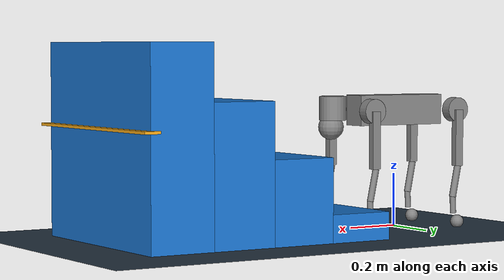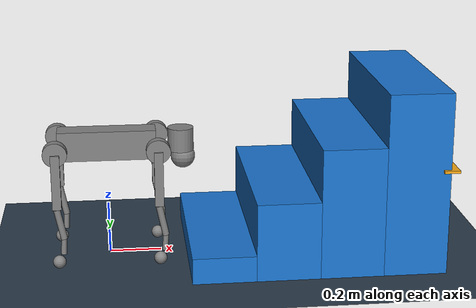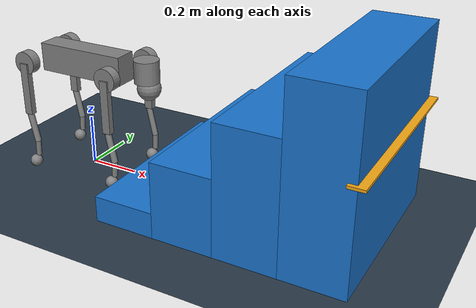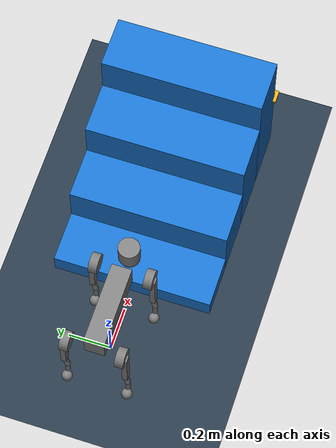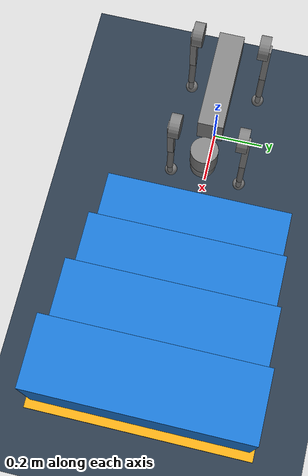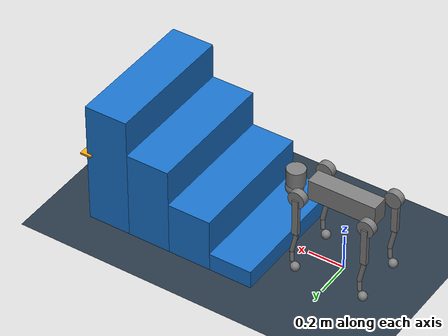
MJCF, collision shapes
<mujoco model="go2 stair acceptance">
  <include file="go2.xml"/>

  <statistic center="0.8 0 0.35" extent="2.0"/>
  <visual>
    <headlight diffuse="0.7 0.7 0.7" ambient="0.35 0.35 0.35" specular="0 0 0"/>
    <rgba haze="0.12 0.20 0.28 1"/>
    <global azimuth="125" elevation="-18"/>
  </visual>
  <asset>
    <texture type="skybox" builtin="gradient" rgb1="0.32 0.52 0.72" rgb2="0.02 0.02 0.04" width="512" height="3072"/>
    <texture type="2d" name="groundplane" builtin="checker" mark="edge" rgb1="0.22 0.30 0.38" rgb2="0.10 0.14 0.18" markrgb="0.8 0.8 0.8" width="300" height="300"/>
    <material name="groundplane" texture="groundplane" texuniform="true" texrepeat="5 5" reflectance="0.12"/>
    <material name="stair_step" rgba="0.10 0.45 0.80 1"/>
    <material name="stair_edge" rgba="0.95 0.65 0.08 1"/>
  </asset>
  <worldbody>
    <light pos="0 0 2" dir="0 0 -1" directional="true" castshadow="false"/>
    <geom name="floor" size="0 0 0.05" type="plane" material="groundplane"/>
    <!-- Four physical collision steps: 0.24 m tread, 0.10 m riser, 0.75 m wide. -->
    <geom name="terrain_step_1" pos="0.42 0 0.05" type="box" size="0.12 0.375 0.05" material="stair_step" contype="1" conaffinity="1"/>
    <geom name="terrain_step_2" pos="0.66 0 0.15" type="box" size="0.12 0.375 0.15" material="stair_step" contype="1" conaffinity="1"/>
    <geom name="terrain_step_3" pos="0.90 0 0.25" type="box" size="0.12 0.375 0.25" material="stair_step" contype="1" conaffinity="1"/>
    <geom name="terrain_step_4" pos="1.14 0 0.35" type="box" size="0.12 0.375 0.35" material="stair_step" contype="1" conaffinity="1"/>
    <!-- A non-colliding top edge marker makes the risers easy to inspect. -->
    <geom name="stair_finish_marker" pos="1.26 0 0.405" type="box" size="0.03 0.39 0.005" material="stair_edge" contype="0" conaffinity="0"/>
  </worldbody>
</mujoco>

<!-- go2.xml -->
<mujoco model="go2">
  <compiler angle="radian" meshdir="assets" autolimits="true" />

  <option cone="elliptic" impratio="100" />

  <default>
    <default class="go2">
      <geom friction="0.4" margin="0.001" condim="1"/>
      <joint axis="0 1 0" damping="0.1" armature="0.01" frictionloss="0.2"/>
      <motor ctrlrange="-40.0 40.0"/>
      <default class="abduction">
        <joint axis="1 0 0" range="-1.0472 1.0472"/>
      </default>
      <default class="hip">
        <default class="front_hip">
          <joint range="-1.5708 3.4907"/>
        </default>
        <default class="back_hip">
          <joint range="-0.5236 4.5379"/>
        </default>
      </default>
      <default class="knee">
        <joint range="-2.7227 -0.83776"/>
        <motor ctrlrange="-45.43 45.43"/>
      </default>
      <default class="visual">
        <geom type="mesh" contype="0" conaffinity="0" group="2"/>
      </default>
      <default class="collision">
        <geom group="3"/>
        <default class="foot">
          <geom size="0.022" pos="-0.002 0 -0.213" priority="1" condim="6"
            friction="0.8 0.02 0.01"/>
        </default>
      </default>
    </default>
  </default>

  <asset>
    <material name="metal" rgba=".9 .95 .95 1" />
    <material name="black" rgba="0 0 0 1" />
    <material name="white" rgba="1 1 1 1" />
    <material name="gray" rgba="0.671705 0.692426 0.774270 1" />

    <mesh file="base_0.obj" />
    <mesh file="base_1.obj" />
    <mesh file="base_2.obj" />
    <mesh file="base_3.obj" />
    <mesh file="base_4.obj" />
    <mesh file="hip_0.obj" />
    <mesh file="hip_1.obj" />
    <mesh file="thigh_0.obj" />
    <mesh file="thigh_1.obj" />
    <mesh file="thigh_mirror_0.obj" />
    <mesh file="thigh_mirror_1.obj" />
    <mesh file="calf_0.obj" />
    <mesh file="calf_1.obj" />
    <mesh file="calf_mirror_0.obj" />
    <mesh file="calf_mirror_1.obj" />
    <mesh file="foot.obj" />
  </asset>

  <worldbody>
    <body name="base_link" pos="0 0 0.445" childclass="go2">
      <inertial pos="0.021112 0 -0.005366" quat="-0.000543471 0.713435 -0.00173769 0.700719"
        mass="6.921"
        diaginertia="0.107027 0.0980771 0.0244531" />
      <freejoint />
      <geom mesh="base_0" material="black" class="visual" />
      <geom mesh="base_1" material="black" class="visual" />
      <geom mesh="base_2" material="black" class="visual" />
      <geom mesh="base_3" material="white" class="visual" />
      <geom mesh="base_4" material="gray" class="visual" />
      <geom size="0.1881 0.04675 0.057" type="box" class="collision" />
      <geom size="0.05 0.045" pos="0.285 0 0.01" type="cylinder" class="collision" />
      <geom size="0.047" pos="0.293 0 -0.06" class="collision" />
      <site name="imu" pos="-0.02557 0 0.04232" />
      <body name="FL_hip" pos="0.1934 0.0465 0">
        <inertial pos="-0.0054 0.00194 -0.000105" quat="0.497014 0.499245 0.505462 0.498237"
          mass="0.678"
          diaginertia="0.00088403 0.000596003 0.000479967" />
        <joint name="FL_hip_joint" class="abduction" />
        <geom mesh="hip_0" material="metal" class="visual" />
        <geom mesh="hip_1" material="gray" class="visual" />
        <geom size="0.046 0.02" pos="0 0.08 0" quat="1 1 0 0" type="cylinder" class="collision" />
        <body name="FL_thigh" pos="0 0.0955 0">
          <inertial pos="-0.00374 -0.0223 -0.0327" quat="0.829533 0.0847635 -0.0200632 0.551623"
            mass="1.152"
            diaginertia="0.00594973 0.00584149 0.000878787" />
          <joint name="FL_thigh_joint" class="front_hip" />
          <geom mesh="thigh_0" material="metal" class="visual" />
          <geom mesh="thigh_1" material="gray" class="visual" />
          <geom size="0.1065 0.01225 0.017" pos="0 0 -0.1065" quat="0.707107 0 0.707107 0"
            type="box" class="collision" />
          <body name="FL_calf" pos="0 0 -0.213">
            <inertial pos="0.00629595 -0.000622121 -0.141417"
              quat="0.710672 0.00154099 -0.00450087 0.703508"
              mass="0.241352" diaginertia="0.0014901 0.00146356 5.31397e-05" />
            <joint name="FL_calf_joint" class="knee" />
            <geom mesh="calf_0" material="gray" class="visual" />
            <geom mesh="calf_1" material="black" class="visual" />
            <geom size="0.012 0.06" pos="0.008 0 -0.06" quat="0.994493 0 -0.104807 0"
              type="cylinder" class="collision" />
            <geom size="0.011 0.0325" pos="0.02 0 -0.148" quat="0.999688 0 0.0249974 0"
              type="cylinder" class="collision" />
            <geom pos="0 0 -0.213" mesh="foot" class="visual" material="black" />
            <geom name="FL" class="foot" />
            <site name="FL_foot_contact" pos="0 0 -0.213" size="0.025" type="sphere" />
            <body name="FL_foot" pos="0 0 -0.213" />
          </body>
        </body>
      </body>
      <body name="FR_hip" pos="0.1934 -0.0465 0">
        <inertial pos="-0.0054 -0.00194 -0.000105" quat="0.498237 0.505462 0.499245 0.497014"
          mass="0.678"
          diaginertia="0.00088403 0.000596003 0.000479967" />
        <joint name="FR_hip_joint" class="abduction" />
        <geom mesh="hip_0" material="metal" class="visual" quat="4.63268e-05 1 0 0" />
        <geom mesh="hip_1" material="gray" class="visual" quat="4.63268e-05 1 0 0" />
        <geom size="0.046 0.02" pos="0 -0.08 0" quat="0.707107 0.707107 0 0" type="cylinder"
          class="collision" />
        <body name="FR_thigh" pos="0 -0.0955 0">
          <inertial pos="-0.00374 0.0223 -0.0327" quat="0.551623 -0.0200632 0.0847635 0.829533"
            mass="1.152"
            diaginertia="0.00594973 0.00584149 0.000878787" />
          <joint name="FR_thigh_joint" class="front_hip" />
          <geom mesh="thigh_mirror_0" material="metal" class="visual" />
          <geom mesh="thigh_mirror_1" material="gray" class="visual" />
          <geom size="0.1065 0.01225 0.017" pos="0 0 -0.1065" quat="0.707107 0 0.707107 0"
            type="box" class="collision" />
          <body name="FR_calf" pos="0 0 -0.213">
            <inertial pos="0.00629595 0.000622121 -0.141417"
              quat="0.703508 -0.00450087 0.00154099 0.710672"
              mass="0.241352" diaginertia="0.0014901 0.00146356 5.31397e-05" />
            <joint name="FR_calf_joint" class="knee" />
            <geom mesh="calf_mirror_0" material="gray" class="visual" />
            <geom mesh="calf_mirror_1" material="black" class="visual" />
            <geom size="0.013 0.06" pos="0.01 0 -0.06" quat="0.995004 0 -0.0998334 0"
              type="cylinder" class="collision" />
            <geom size="0.011 0.0325" pos="0.02 0 -0.148" quat="0.999688 0 0.0249974 0"
              type="cylinder" class="collision" />
            <geom pos="0 0 -0.213" mesh="foot" class="visual" material="black" />
            <geom name="FR" class="foot" />
            <site name="FR_foot_contact" pos="0 0 -0.213" size="0.025" type="sphere" />
            <body name="FR_foot" pos="0 0 -0.213" />
          </body>
        </body>
      </body>
      <body name="RL_hip" pos="-0.1934 0.0465 0">
        <inertial pos="0.0054 0.00194 -0.000105" quat="0.505462 0.498237 0.497014 0.499245"
          mass="0.678"
          diaginertia="0.00088403 0.000596003 0.000479967" />
        <joint name="RL_hip_joint" class="abduction" />
        <geom mesh="hip_0" material="metal" class="visual" quat="4.63268e-05 0 1 0" />
        <geom mesh="hip_1" material="gray" class="visual" quat="4.63268e-05 0 1 0" />
        <geom size="0.046 0.02" pos="0 0.08 0" quat="0.707107 0.707107 0 0" type="cylinder"
          class="collision" />
        <body name="RL_thigh" pos="0 0.0955 0">
          <inertial pos="-0.00374 -0.0223 -0.0327" quat="0.829533 0.0847635 -0.0200632 0.551623"
            mass="1.152"
            diaginertia="0.00594973 0.00584149 0.000878787" />
          <joint name="RL_thigh_joint" class="back_hip" />
          <geom mesh="thigh_0" material="metal" class="visual" />
          <geom mesh="thigh_1" material="gray" class="visual" />
          <geom size="0.1065 0.01225 0.017" pos="0 0 -0.1065" quat="0.707107 0 0.707107 0"
            type="box" class="collision" />
          <body name="RL_calf" pos="0 0 -0.213">
            <inertial pos="0.00629595 -0.000622121 -0.141417"
              quat="0.710672 0.00154099 -0.00450087 0.703508"
              mass="0.241352" diaginertia="0.0014901 0.00146356 5.31397e-05" />
            <joint name="RL_calf_joint" class="knee" />
            <geom mesh="calf_0" material="gray" class="visual" />
            <geom mesh="calf_1" material="black" class="visual" />
            <geom size="0.013 0.06" pos="0.01 0 -0.06" quat="0.995004 0 -0.0998334 0"
              type="cylinder" class="collision" />
            <geom size="0.011 0.0325" pos="0.02 0 -0.148" quat="0.999688 0 0.0249974 0"
              type="cylinder" class="collision" />
            <geom pos="0 0 -0.213" mesh="foot" class="visual" material="black" />
            <geom name="RL" class="foot" />
            <site name="RL_foot_contact" pos="0 0 -0.213" size="0.025" type="sphere" />
            <body name="RL_foot" pos="0 0 -0.213" />
          </body>
        </body>
      </body>
      <body name="RR_hip" pos="-0.1934 -0.0465 0">
        <inertial pos="0.0054 -0.00194 -0.000105" quat="0.499245 0.497014 0.498237 0.505462"
          mass="0.678"
          diaginertia="0.00088403 0.000596003 0.000479967" />
        <joint name="RR_hip_joint" class="abduction" />
        <geom mesh="hip_0" material="metal" class="visual"
          quat="2.14617e-09 4.63268e-05 4.63268e-05 -1" />
        <geom mesh="hip_1" material="gray" class="visual"
          quat="2.14617e-09 4.63268e-05 4.63268e-05 -1" />
        <geom size="0.046 0.02" pos="0 -0.08 0" quat="0.707107 0.707107 0 0" type="cylinder"
          class="collision" />
        <body name="RR_thigh" pos="0 -0.0955 0">
          <inertial pos="-0.00374 0.0223 -0.0327" quat="0.551623 -0.0200632 0.0847635 0.829533"
            mass="1.152"
            diaginertia="0.00594973 0.00584149 0.000878787" />
          <joint name="RR_thigh_joint" class="back_hip" />
          <geom mesh="thigh_mirror_0" material="metal" class="visual" />
          <geom mesh="thigh_mirror_1" material="gray" class="visual" />
          <geom size="0.1065 0.01225 0.017" pos="0 0 -0.1065" quat="0.707107 0 0.707107 0"
            type="box" class="collision" />
          <body name="RR_calf" pos="0 0 -0.213">
            <inertial pos="0.00629595 0.000622121 -0.141417"
              quat="0.703508 -0.00450087 0.00154099 0.710672"
              mass="0.241352" diaginertia="0.0014901 0.00146356 5.31397e-05" />
            <joint name="RR_calf_joint" class="knee" />
            <geom mesh="calf_mirror_0" material="gray" class="visual" />
            <geom mesh="calf_mirror_1" material="black" class="visual" />
            <geom size="0.013 0.06" pos="0.01 0 -0.06" quat="0.995004 0 -0.0998334 0"
              type="cylinder" class="collision" />
            <geom size="0.011 0.0325" pos="0.02 0 -0.148" quat="0.999688 0 0.0249974 0"
              type="cylinder" class="collision" />
            <geom pos="0 0 -0.213" mesh="foot" class="visual" material="black" />
            <geom name="RR" class="foot" />
            <site name="RR_foot_contact" pos="0 0 -0.213" size="0.025" type="sphere" />
            <body name="RR_foot" pos="0 0 -0.213" />
          </body>
        </body>
      </body>
    </body>
  </worldbody>

  <actuator>
    <motor class="abduction" name="FR_hip" joint="FR_hip_joint" />
    <motor class="hip" name="FR_thigh" joint="FR_thigh_joint" />
    <motor class="knee" name="FR_calf" joint="FR_calf_joint" />
    <motor class="abduction" name="FL_hip" joint="FL_hip_joint" />
    <motor class="hip" name="FL_thigh" joint="FL_thigh_joint" />
    <motor class="knee" name="FL_calf" joint="FL_calf_joint" />
    <motor class="abduction" name="RR_hip" joint="RR_hip_joint" />
    <motor class="hip" name="RR_thigh" joint="RR_thigh_joint" />
    <motor class="knee" name="RR_calf" joint="RR_calf_joint" />
    <motor class="abduction" name="RL_hip" joint="RL_hip_joint" />
    <motor class="hip" name="RL_thigh" joint="RL_thigh_joint" />
    <motor class="knee" name="RL_calf" joint="RL_calf_joint" />
  </actuator>

  <sensor>
    <jointpos name="FR_hip_pos" joint="FR_hip_joint" />
    <jointpos name="FR_thigh_pos" joint="FR_thigh_joint" />
    <jointpos name="FR_calf_pos" joint="FR_calf_joint" />
    <jointpos name="FL_hip_pos" joint="FL_hip_joint" />
    <jointpos name="FL_thigh_pos" joint="FL_thigh_joint" />
    <jointpos name="FL_calf_pos" joint="FL_calf_joint" />
    <jointpos name="RR_hip_pos" joint="RR_hip_joint" />
    <jointpos name="RR_thigh_pos" joint="RR_thigh_joint" />
    <jointpos name="RR_calf_pos" joint="RR_calf_joint" />
    <jointpos name="RL_hip_pos" joint="RL_hip_joint" />
    <jointpos name="RL_thigh_pos" joint="RL_thigh_joint" />
    <jointpos name="RL_calf_pos" joint="RL_calf_joint" />

    <jointvel name="FR_hip_vel" joint="FR_hip_joint" />
    <jointvel name="FR_thigh_vel" joint="FR_thigh_joint" />
    <jointvel name="FR_calf_vel" joint="FR_calf_joint" />
    <jointvel name="FL_hip_vel" joint="FL_hip_joint" />
    <jointvel name="FL_thigh_vel" joint="FL_thigh_joint" />
    <jointvel name="FL_calf_vel" joint="FL_calf_joint" />
    <jointvel name="RR_hip_vel" joint="RR_hip_joint" />
    <jointvel name="RR_thigh_vel" joint="RR_thigh_joint" />
    <jointvel name="RR_calf_vel" joint="RR_calf_joint" />
    <jointvel name="RL_hip_vel" joint="RL_hip_joint" />
    <jointvel name="RL_thigh_vel" joint="RL_thigh_joint" />
    <jointvel name="RL_calf_vel" joint="RL_calf_joint" />

    <jointactuatorfrc name="FR_hip_torque" joint="FR_hip_joint" noise="0.01" />
    <jointactuatorfrc name="FR_thigh_torque" joint="FR_thigh_joint" noise="0.01" />
    <jointactuatorfrc name="FR_calf_torque" joint="FR_calf_joint" noise="0.01" />
    <jointactuatorfrc name="FL_hip_torque" joint="FL_hip_joint" noise="0.01" />
    <jointactuatorfrc name="FL_thigh_torque" joint="FL_thigh_joint" noise="0.01" />
    <jointactuatorfrc name="FL_calf_torque" joint="FL_calf_joint" noise="0.01" />
    <jointactuatorfrc name="RR_hip_torque" joint="RR_hip_joint" noise="0.01" />
    <jointactuatorfrc name="RR_thigh_torque" joint="RR_thigh_joint" noise="0.01" />
    <jointactuatorfrc name="RR_calf_torque" joint="RR_calf_joint" noise="0.01" />
    <jointactuatorfrc name="RL_hip_torque" joint="RL_hip_joint" noise="0.01" />
    <jointactuatorfrc name="RL_thigh_torque" joint="RL_thigh_joint" noise="0.01" />
    <jointactuatorfrc name="RL_calf_torque" joint="RL_calf_joint" noise="0.01" />

    <framequat name="imu_quat" objtype="site" objname="imu" />
    <gyro name="imu_gyro" site="imu" />
    <accelerometer name="imu_acc" site="imu" />

    <touch name="FR_foot_force" site="FR_foot_contact" />
    <touch name="FL_foot_force" site="FL_foot_contact" />
    <touch name="RR_foot_force" site="RR_foot_contact" />
    <touch name="RL_foot_force" site="RL_foot_contact" />
    <force name="FR_foot_force_3d" site="FR_foot_contact" />
    <force name="FL_foot_force_3d" site="FL_foot_contact" />
    <force name="RR_foot_force_3d" site="RR_foot_contact" />
    <force name="RL_foot_force_3d" site="RL_foot_contact" />

    <framepos name="frame_pos" objtype="site" objname="imu" />
    <framelinvel name="frame_vel" objtype="site" objname="imu" />
  </sensor>

  <keyframe>
    <key name="home" qpos="0 0 0.27 1 0 0 0 0 0.9 -1.8 0 0.9 -1.8 0 0.9 -1.8 0 0.9 -1.8"
      ctrl="0 0.9 -1.8 0 0.9 -1.8 0 0.9 -1.8 0 0.9 -1.8" />
  </keyframe>
</mujoco>
